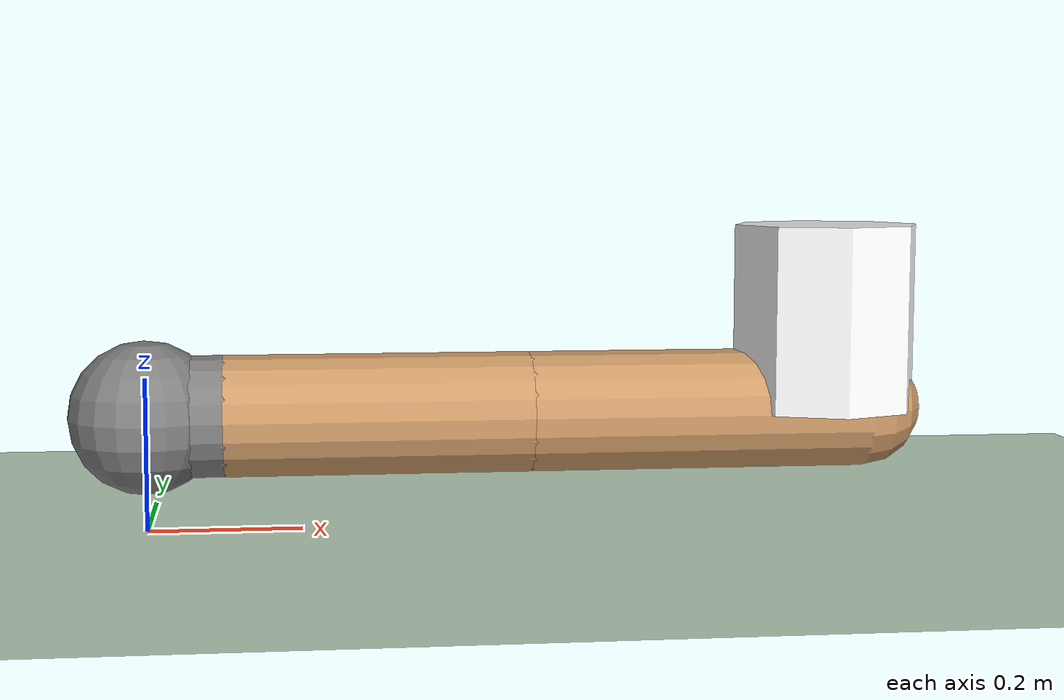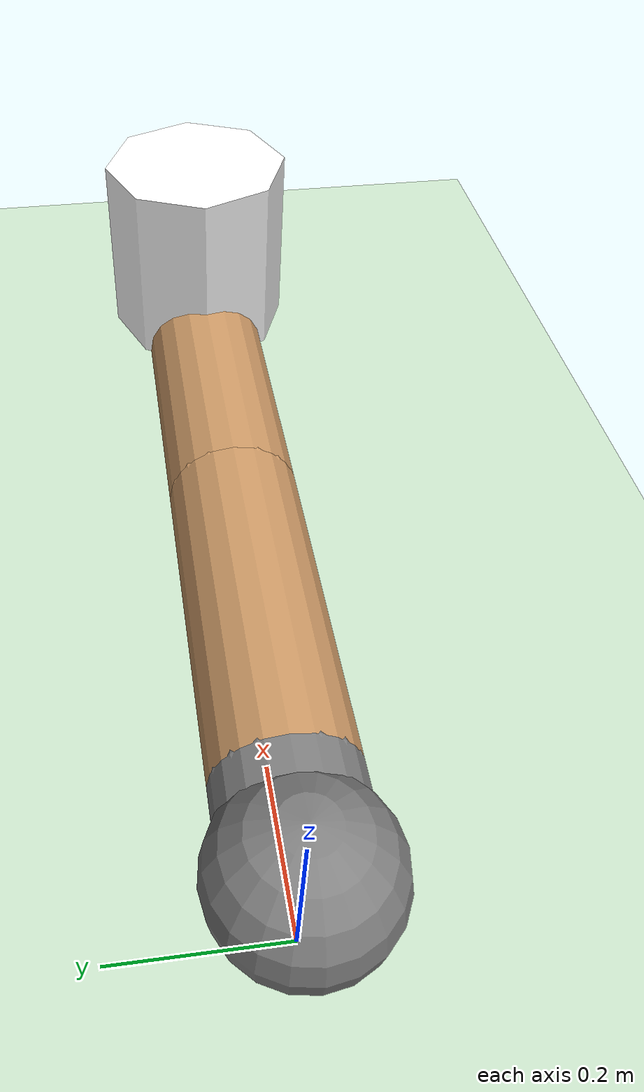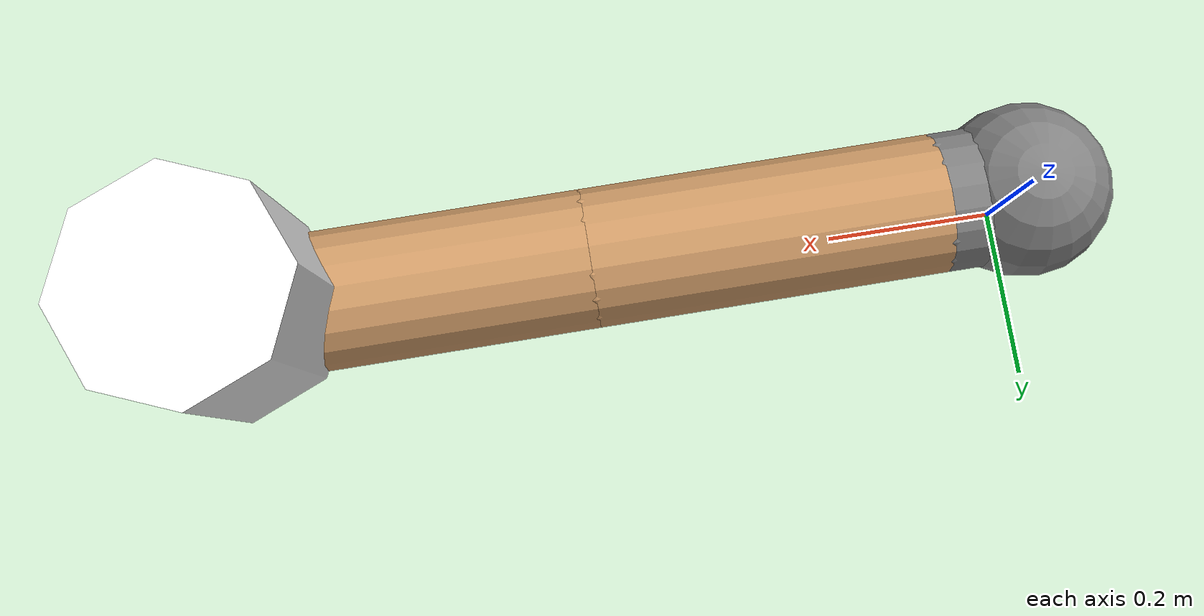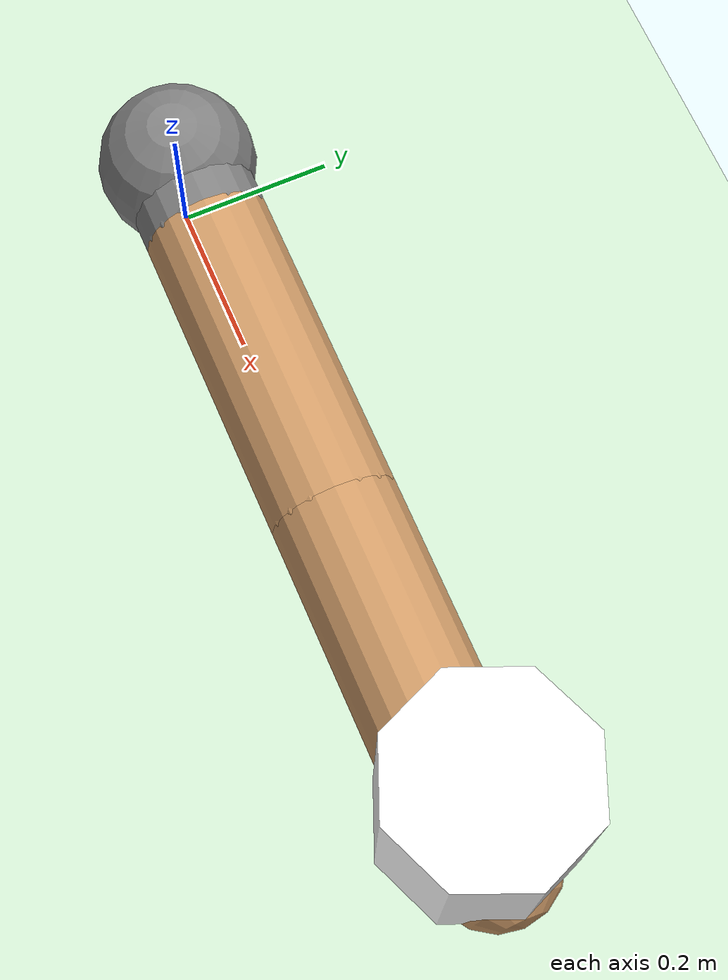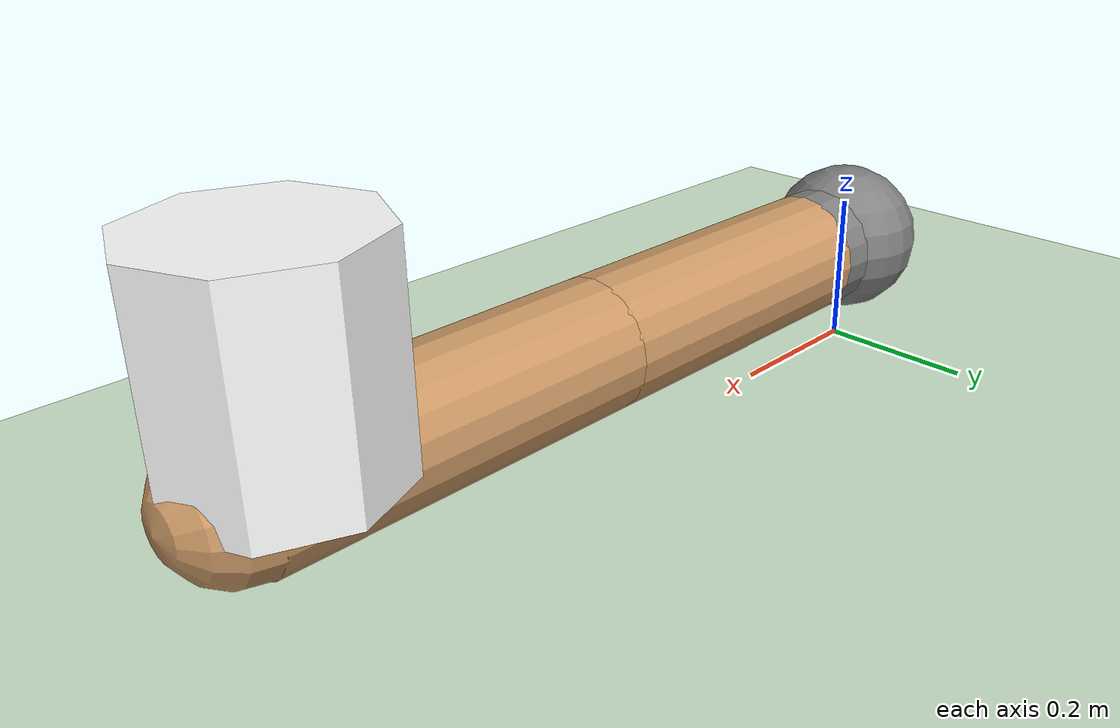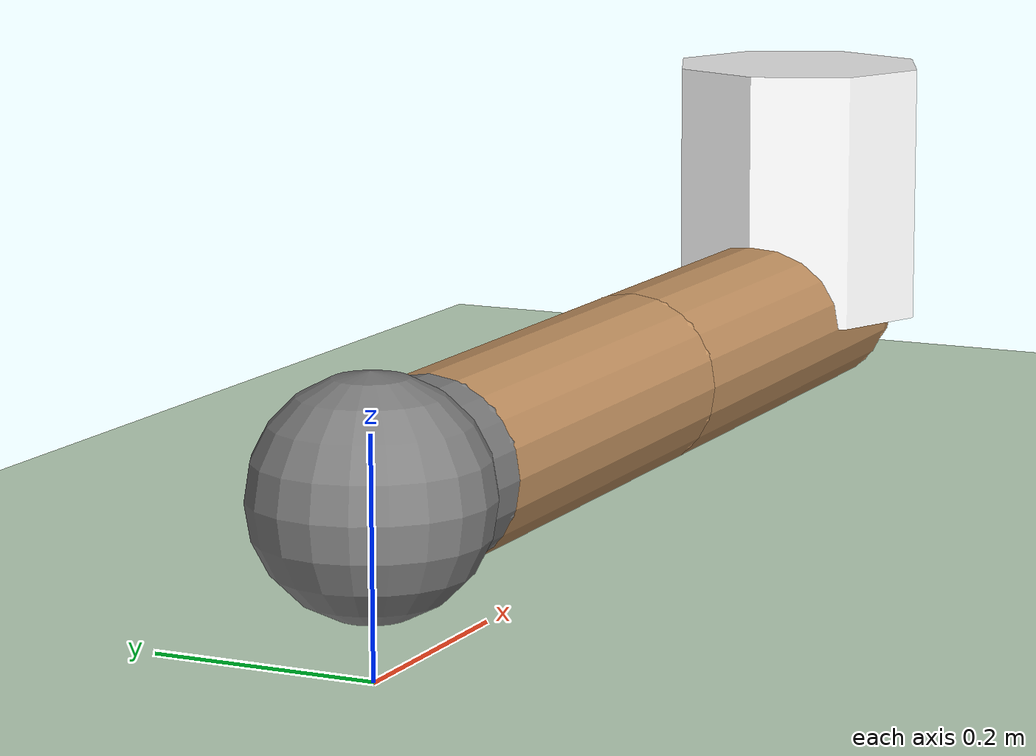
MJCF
<?xml version="1.0" encoding="utf-8"?>
<mujoco model="planar_gripper">
	<compiler angle="degree" coordinate="local" inertiafromgeom="true"/>
	<option integrator="RK4" timestep="0.01"/>
	<custom>
        <numeric name="init_qpos" data="0. 0.5 -0.6 0. -0.5 0.6"/>
	</custom>
	<default class="geom0">
		<joint armature="1" damping="1" limited="true" axis="0 0 1"/>
		<geom conaffinity="1" contype="1" condim="3" friction="1 0.5 0.5" margin="0.001" rgba="0.8 0.6 0.4 1"/>
	</default>
	<asset>
		<texture builtin="gradient" height="100" rgb1="1 1 1" rgb2="0 0 0" type="skybox" width="100"/>
		<texture builtin="flat" height="1278" mark="cross" markrgb="1 1 1" name="texgeom" random="0.01" rgb1="0.8 0.6 0.4" rgb2="0.8 0.6 0.4" type="cube" width="127"/>
		<texture builtin="flat" height="100" name="texplane" rgb1="0 0 0" rgb2="0.8 0.8 0.8" type="2d" width="100"/>
		<material name="MatPlane" reflectance="0.5" shininess="1" specular="1" texrepeat="60 60" texture="texplane"/>
		<material name="geom" texture="texgeom" texuniform="true"/>
        <mesh name="Cylinder" file="cylinder.stl"/>
        <mesh name="OctPrism" file="octprism.stl"/>
        <mesh name="Ellipsoid" file="ellipsoid.stl"/>
        <mesh name="CapsuleShort" file="capsule.stl"/>
        <mesh name="CapsuleLong" file="capsule-2.stl"/>
	</asset>
	<worldbody>
		<light cutoff="100" diffuse="1 1 1" dir="0 0 -1.3" directional="true" exponent="1" pos="0 0 1.3" specular="0.1 0.1 0.1"/>
		<geom conaffinity="1" condim="3" material="MatPlane" name="floor" pos="0 0 0" rgba="0.8 0.9 0.8 1" size="40 40 40" type="plane"/>
		<body name="root" pos="0 0 0.">
			<camera mode="trackcom" name="track" pos="0 -3 0.3" xyaxes="1 0 0 0 0 1"/>
			<geom name="root_geom" pos="0 0 0.15" size="0.1" type="sphere" density="100"/>
            <joint axis="0 0 1" armature="0" damping="0" limited="true" margin="0.01" name="root" pos="0 0 0" range="-1 1"/>
			<body name="left_finger" pos="0 0 0.15" euler="0 0 0">
				<joint axis="0 0 1" name="aux_joint_left_finger" range="-1 1" type="hinge"/>
                <geom fromto="0 0 0 0.1 0 0" name="aux_geom_left_finger" size="0.08" type="capsule"/>
				<body name="proximal_body_left_finger" pos="0.1 0 0">
					<joint axis="0 0 1" name="proximal_joint_left_finger" pos="0.0 0.0 0.0" range="-90 0" type="hinge"/>
                    <geom class="geom0" fromto="0.0 0.0 0.0 0.4 0.0 0.0" name="proximal_geom_left_finger" size="0.08" type="capsule"/>
					<body name="distal_body_left_finger" pos="0.4 0.0 0">
						<joint axis="0 0 1" name="distal_joint_left_finger" pos="0.0 0.0 0.0" range="0 60" type="hinge"/>
						<geom class="geom0" fromto="0.0 0.0 0.0 0.45 0.0 0.0" name="distal_geom_left_finger" size="0.08" type="capsule"/>
					</body>
				</body>
			</body>
			<body name="right_finger" pos="0 0 0.15" euler="0 0 0">
				<joint axis="0 0 1" name="aux_joint_right_finger" range="-1 1" type="hinge"/>
				<geom fromto="0 0 0 0.1 0 0" name="aux_geom_right_finger" size="0.08" type="capsule"/>
				<body name="proximal_body_right_finger" pos="0.1 0 0.">
					<joint axis="0 0 1" name="proximal_joint_right_finger" pos="0.0 0.0 0." range="0 90" type="hinge"/>
					<geom class="geom0" fromto="0.0 0.0 0.0 0.4 0.0 0.0" name="proximal_geom_right_finger" size="0.08" type="capsule"/>
					<body name="distal_body_right_finger" pos="0.4 0.0 0.">
						<joint axis="0 0 1" name="distal_joint_right_finger" pos="0.0 0.0 0.0" range="-60 0" type="hinge"/>
						<geom class="geom0" fromto="0.0 0.0 0.0 0.45 0.0 0.0" name="distal_geom_right_finger" size="0.08" type="capsule"/>
					</body>
				</body>
			</body>
            <body name="object" pos="0.9 0 0.15">
              <geom class="geom0" name="obj_com" rgba="1 1 1 0" type="sphere" size="0.01" density="100" contype="1" conaffinity="0"/>
              <geom class="geom0" name="obj_surface" rgba="1 1 1 1" type="mesh" mesh="OctPrism" size="1.25 1.25 1.25" density="1" contype="1" conaffinity="0"/>
              <joint axis="0 0 1" name="obj_theta" type="hinge" pos="0 0 0" range="-180 180" damping="0.5"/>
            </body>
		</body>

	</worldbody>
	<actuator>
		<motor ctrllimited="true" ctrlrange="-1.0 1.0" gear="150" joint="proximal_joint_left_finger"/>
		<motor ctrllimited="true" ctrlrange="-1.0 1.0" gear="150" joint="distal_joint_left_finger"/>
		<motor ctrllimited="true" ctrlrange="-1.0 1.0" gear="150" joint="proximal_joint_right_finger"/>
		<motor ctrllimited="true" ctrlrange="-1.0 1.0" gear="150" joint="distal_joint_right_finger"/>
	</actuator>
</mujoco>
